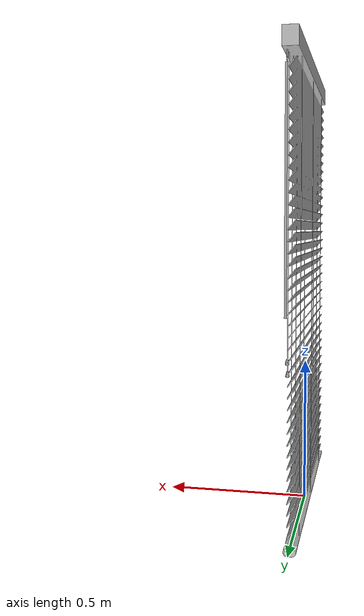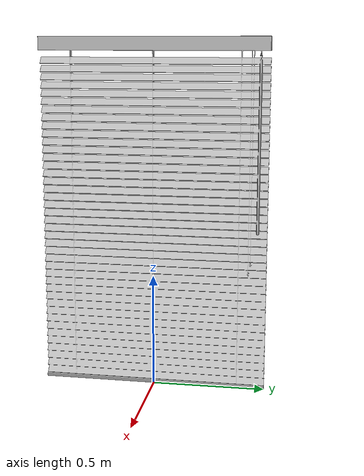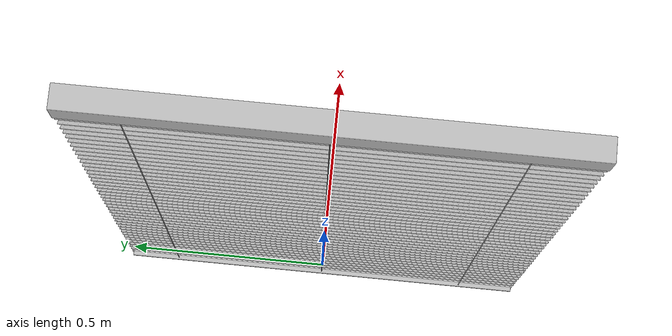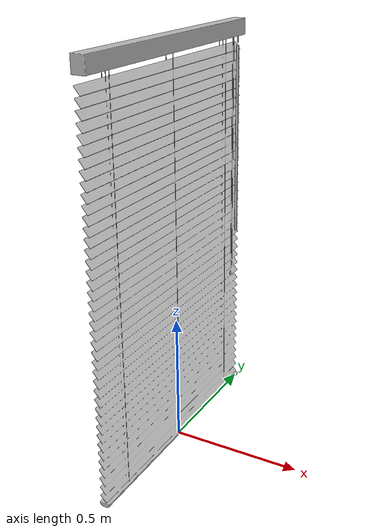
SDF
<?xml version='1.0'?>
<sdf version='1.4'>
  <model name='747'>
    <pose>0 0 0 0 0 0</pose>
    <static>true</static>
    <link name='link'>
      <collision name='collision'>
        <pose>0 0 0 0 0 0</pose>
        <geometry>
          <box>
            <size>0.0500004 1 2</size>
          </box>
        </geometry>
      </collision>
      <visual name='visual'>
        <pose>0 0 0 0 0 0</pose>
        <geometry>
          <mesh><uri>model://747/747.dae</uri></mesh>
        </geometry>
      </visual>
    </link>
  </model>
</sdf>
